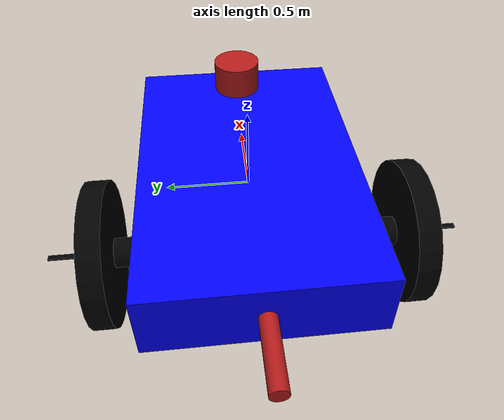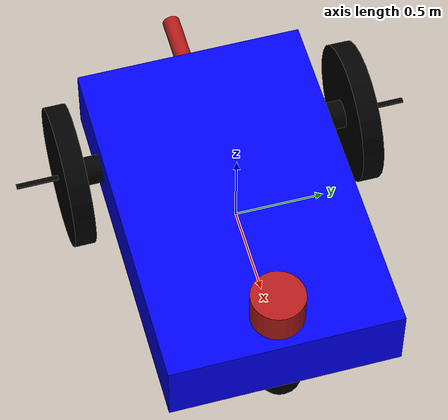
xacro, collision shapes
<?xml version="1.0" ?>

<robot name="robot" xmlns:xacro="http://www.ros.org/wiki/xacro">

    <xacro:include filename="$(find robot_description)/urdf/robot.gazebo" />

    <!-- Parameters -->
    <xacro:property name="chassis_mass" value="5" />
    <xacro:property name="pi" value="3.1415" />

    <!-- Link - chassis -->
    <link name="link_chassis">
        <inertial>
            <mass value="${2 * chassis_mass}" />
            <origin xyz="0 0 0.3" rpy="0 0 0" />
            <inertia ixx="1.5417" ixy="0" ixz="0" iyy="3.467" iyz="0" izz="4.742" />
        </inertial>

        <collision>
            <geometry>
                <box size="2 1.3 0.4" />
            </geometry>
        </collision>

        <visual>
            <geometry>
                <mesh filename="package://robot_description/meshes/chassis.stl" />
            </geometry>
            <material name="Blue">
                <color rgba="0 0 1 1" />
            </material>
        </visual>
    </link>

    <!-- Joint - chassis / left wheel -->
    <joint name="joint_chassis_left_wheel" type="continuous">
        <origin rpy="0 0 0" xyz="-0.5 0.65 0" />
        <child link="link_left_wheel" />
        <parent link="link_chassis" />
        <axis rpy="0 0 0" xyz="0 1 0" />
        <limit effort="10000" velocity="1000" />
        <joint_properties damping="1.0" friction="1.0" />
    </joint>

    <!-- Link - left wheel -->
    <link name="link_left_wheel">
        <inertial>
            <mass value="1" />
            <origin xyz="0 0 0" rpy="0 0 0" />
            <inertia ixx="0.002526666666667" ixy="0" ixz="0" iyy="0.002526666666667" iyz="0" izz="0.005"/>
        </inertial>

        <collision>
            <origin rpy="${pi / 2} 0 0" xyz="0 0.18 0" />
            <geometry>
                <cylinder length="0.12" radius="0.4"/>
            </geometry>
        </collision>
        <visual>
            <origin rpy="${pi / 2} 0 0" xyz="0 0.18 0" />
            <geometry>
                <mesh filename="package://robot_description/meshes/wheel.stl" />
            </geometry>
            <material name="Black">
                <color rgba="0 0 0 1" />
            </material>
        </visual>

        <collision>
            <origin rpy="${pi / 2} 0 0" xyz="0 0.06 0" />
            <geometry>
                <cylinder length="0.18" radius="0.08"/>
            </geometry>
        </collision>
        <visual>
            <origin rpy="${pi / 2} 0 0" xyz="0 0.06 0" />
            <geometry>
                <cylinder length="0.18" radius="0.08"/>
            </geometry>
            <material name="White">
                <color rgba="1 1 1 1" />
            </material>
        </visual>

        <collision>
            <origin rpy="${pi / 2} 0 0" xyz="0 0.18 0" />
            <geometry>
                <box size="0.03 0.01 0.6" />
            </geometry>
        </collision>
        <visual>
            <origin rpy="${pi / 2} 0 0" xyz="0 0.18 0" />
            <geometry>
                <box size="0.03 0.01 0.6" />
            </geometry>
            <material name="White">
                <color rgba="1 1 1 1" />
            </material>
        </visual>
    </link>

    <!-- Joint - chassis / right wheel -->
    <joint name="joint_chassis_right_wheel" type="continuous">
        <origin rpy="0 0 0" xyz="-0.5 -0.65 0" />
        <child link="link_right_wheel" />
        <parent link="link_chassis" />
        <axis rpy="0 0 0" xyz="0 1 0" />
        <limit effort="10000" velocity="1000" />
        <joint_properties damping="1.0" friction="1.0" />
    </joint>

    <!-- Link - right wheel -->
    <link name="link_right_wheel">
        <inertial>
            <mass value="1" />
            <origin xyz="0 0 0" rpy="0 0 0" />
            <inertia ixx="0.002526666666667" ixy="0" ixz="0" iyy="0.002526666666667" iyz="0" izz="0.005"/>
        </inertial>

        <collision>
            <origin rpy="${pi / 2} 0 0" xyz="0 -0.18 0" />
            <geometry>
                <cylinder length="0.12" radius="0.4"/>
            </geometry>
        </collision>
        <visual>
            <origin rpy="${pi / 2} 0 0" xyz="0 -0.18 0" />
            <geometry>
                <mesh filename="package://robot_description/meshes/wheel.stl" />
            </geometry>
            <material name="Black">
                <color rgba="0 0 0 1" />
            </material>
        </visual>

        <collision>
            <origin rpy="${pi / 2} 0 0" xyz="0 -0.06 0" />
            <geometry>
                <cylinder length="0.18" radius="0.08"/>
            </geometry>
        </collision>
        <visual>
            <origin rpy="${pi / 2} 0 0" xyz="0 -0.06 0" />
            <geometry>
                <cylinder length="0.18" radius="0.08"/>
            </geometry>
            <material name="White">
                <color rgba="1 1 1 1" />
            </material>
        </visual>

        <collision>
            <origin rpy="${pi / 2} 0 0" xyz="0 -0.18 0" />
            <geometry>
                <box size="0.03 0.01 0.6" />
            </geometry>
        </collision>
        <visual>
            <origin rpy="${pi / 2} 0 0" xyz="0 -0.18 0" />
            <geometry>
                <box size="0.03 0.01 0.6" />
            </geometry>
            <material name="White">
                <color rgba="1 1 1 1" />
            </material>
        </visual>
    </link>

    <!-- Joint - chassis / caster wheel -->
    <joint name="joint_chassis_caster_wheel" type="fixed">
        <origin rpy="0 0 0" xyz="0.875 0 -0.275" />
        <child link="link_caster_wheel" />
        <parent link="link_chassis" />
        <joint_properties damping="1.0" friction="1.0" />
    </joint>

    <!-- Link - caster wheel -->
    <link name="link_caster_wheel">
        <inertial>
            <mass value="1" />
            <origin xyz="0 0 0" rpy="0 0 0" />
            <inertia ixx="0.002526666666667" ixy="0" ixz="0" iyy="0.002526666666667" iyz="0" izz="0.005"/>
        </inertial>

        <collision>
            <origin rpy="0 0 0" xyz="0 0 0" />
            <geometry>
                <sphere radius="0.125" />
            </geometry>
        </collision>
        <visual>
            <geometry>
                <sphere radius="0.125" />
            </geometry>
            <material name="Black">
                <color rgba="0 0 0 1" />
            </material>
        </visual>
    </link>

        <!-- Joint : Laser scan -->
    <joint name="joint_laser_scan_chassis" type="fixed">
        <origin rpy="0 0 0" xyz="0.8 0 0.3" />
        <child link="link_laser_scan" />
        <parent link="link_chassis" />
        <joint_properties damping="1.0" friction="1.0" />
    </joint>

    <!-- Link : Laser scan -->
    <link name="link_laser_scan">
        <inertial>
            <origin xyz="0 0 0" rpy="0 0 0" />
            <mass value="0.5" />
            <inertia ixx="0.000252666666667" ixy="0" ixz="0" iyy="0.000252666666667" iyz="0" izz="0.0005"/>
        </inertial>
        <visual>
            <origin xyz="0 0 0" rpy="0 0 0" />
            <geometry>
                <cylinder radius="0.15" length="0.20"/>
            </geometry>
            <material name="Red">
                <color rgba="0.7 0.1 0.1 1" />
            </material>
        </visual>
        <collision>
            <origin xyz="0 0 0" rpy="0 0 0"/>
            <geometry>
                <cylinder radius="0.15" length="0.20"/>
            </geometry>
        </collision>
    </link>

    <!-- Robot tail -->
    <joint name="joint_tail" type="continuous">
        <origin rpy="0 0 0" xyz="-1 0 0" />
        <child link="link_tail" />
        <axis rpy="0 0 0" xyz="0 1 0" />
        <parent link="link_chassis" />
        <joint_properties damping="1.0" friction="1.0" />
    </joint>

    <link name="link_tail">
        <inertial>
            <origin xyz="0 0 0" rpy="0 0 0" />
            <mass value="0.5" />
            <inertia ixx="0.000252666666667" ixy="0" ixz="0" iyy="0.000252666666667" iyz="0" izz="0.0005"/>
        </inertial>
        <visual>
            <origin xyz="-0.2 0 0" rpy="0 ${pi/2} 0" />
            <geometry>
                <cylinder radius="0.05" length="0.40"/>
            </geometry>
            <material name="Red">
                <color rgba="0.7 0.1 0.1 1" />
            </material>
        </visual>
        <collision>
            <origin xyz="-0.2 0 0" rpy="0 ${pi/2} 0"/>
            <geometry>
                <cylinder radius="0.05" length="0.40"/>
            </geometry>
        </collision>
    </link>

    <transmission name="tran_tail">
        <type>transmission_interface/SimpleTransmission</type>
        <joint name="joint_tail">
            <hardwareInterface>hardware_interface/EffortJointInterface</hardwareInterface>
        </joint>
        <actuator name="motor_joint_tail">
            <hardwareInterface>hardware_interface/EffortJointInterface</hardwareInterface>
            <mechanicalReduction>1</mechanicalReduction>
        </actuator>
    </transmission>

</robot>
